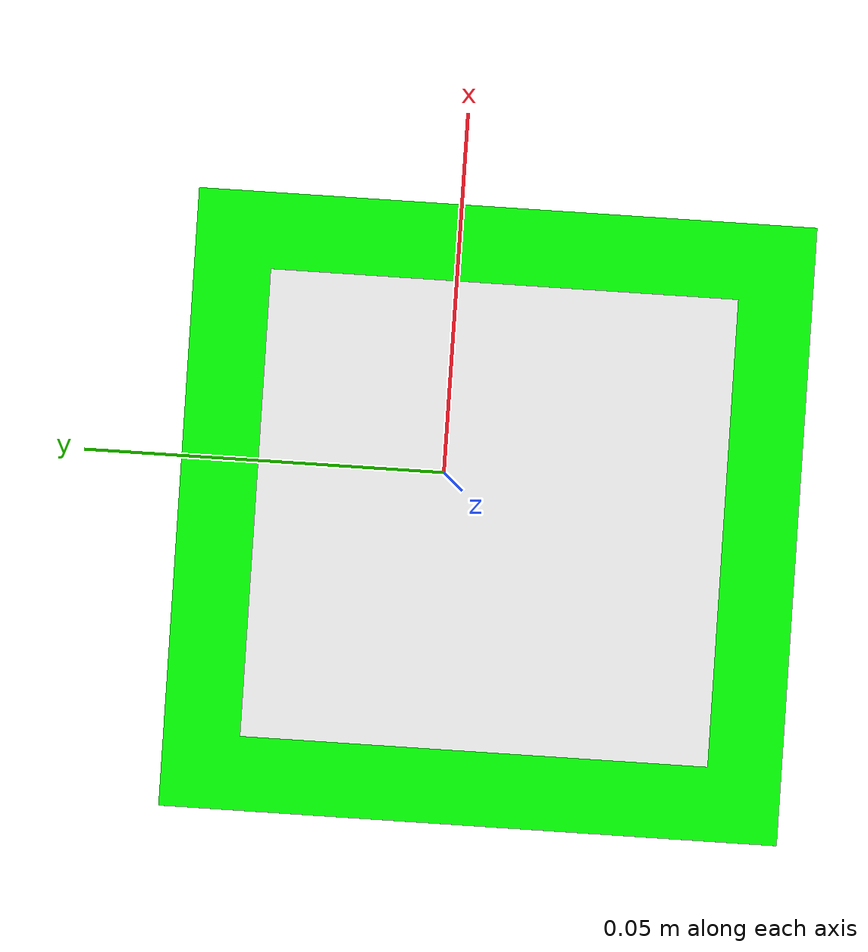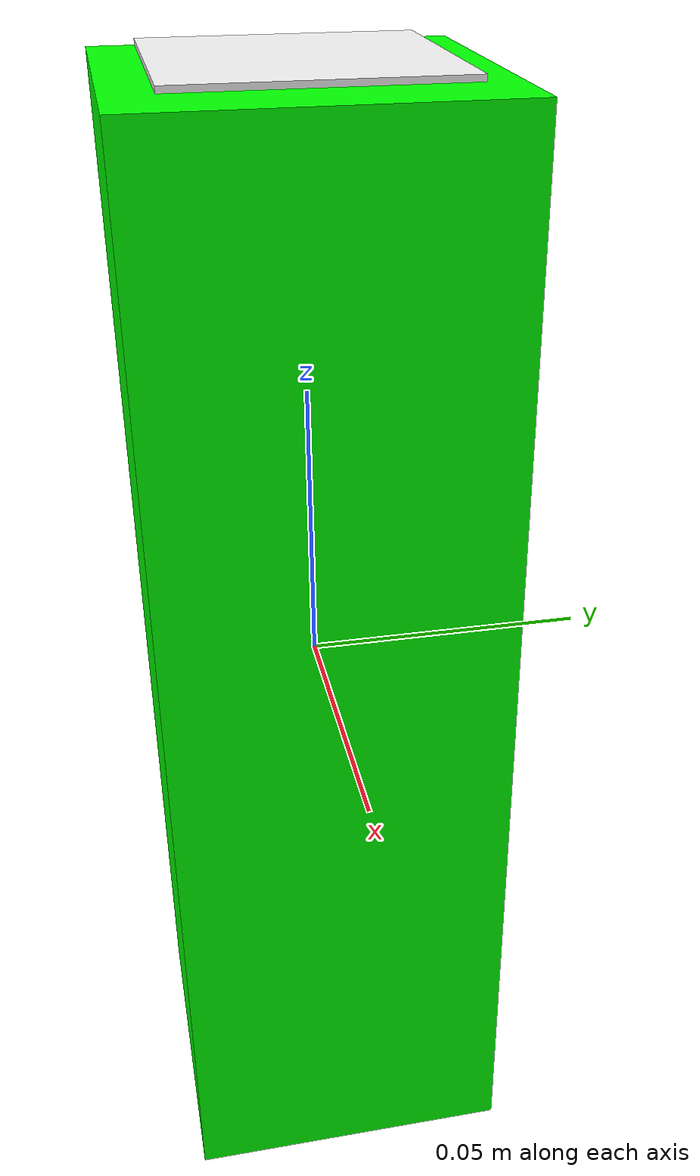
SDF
<?xml version="1.0" ?>
<sdf version="1.9">
  <model name="box_2">
    <link name="link">
      <inertial>
        <mass>0.2</mass>
        <inertia>
          <ixx>0.00068</ixx><iyy>0.00068</iyy><izz>0.00012</izz>
          <ixy>0</ixy><ixz>0</ixz><iyz>0</iyz>
        </inertia>
      </inertial>
      <collision name="c">
        <geometry><box><size>0.06 0.06 0.20</size></box></geometry>
        <surface>
          <friction><ode><mu>0.8</mu><mu2>0.5</mu2></ode></friction>
          <contact><ode>
            <kp>1e6</kp><kd>100</kd>
            <soft_cfm>0.0</soft_cfm><soft_erp>0.2</soft_erp>
            <min_depth>0.001</min_depth><max_vel>0.1</max_vel>
          </ode></contact>
        </surface>
      </collision>
      <visual name="v">
        <geometry><box><size>0.06 0.06 0.20</size></box></geometry>
        <material><ambient>0 1 0 1</ambient><diffuse>0 1 0 1</diffuse></material>
      </visual>
      <!-- ArUco marker (ID=1) on top -->
      <visual name="aruco_marker_1">
        <pose>0 0 0.1015 0 0 0</pose>
        <geometry><box><size>0.045 0.045 0.001</size></box></geometry>
        <material>
          <ambient>0.95 0.95 0.95 1</ambient>
          <diffuse>0.95 0.95 0.95 1</diffuse>
        </material>
      </visual>
    </link>
  </model>
</sdf>
